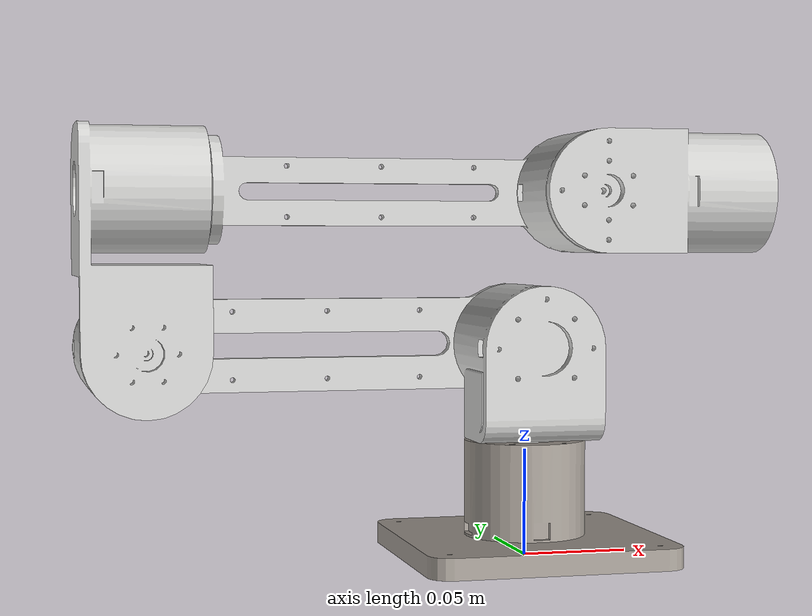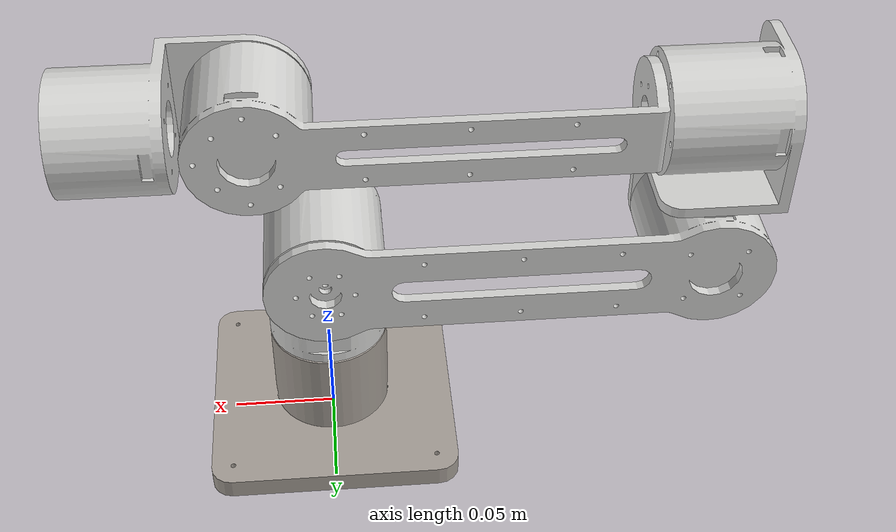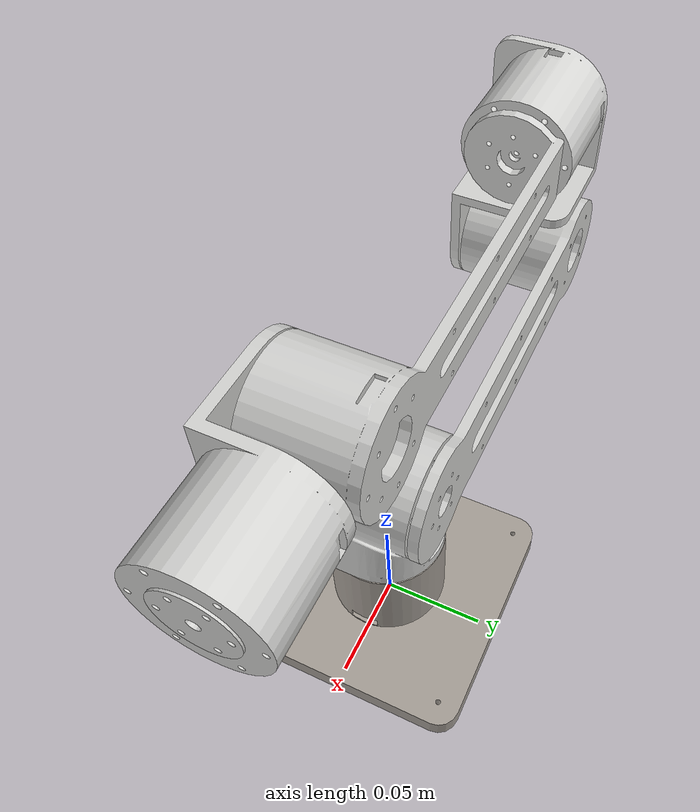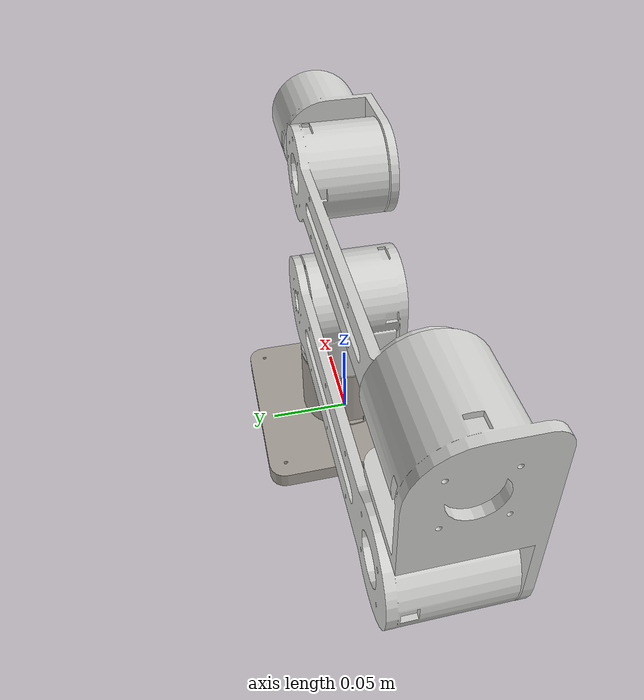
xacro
<?xml version="1.0"?>
<robot xmlns:xacro="http://www.ros.org/wiki/xacro" name="robot_1">
    <xacro:arg name="initial_positions_file" default="initial_positions.yaml" />

    <!-- Import robot_1 urdf file -->
    <xacro:include filename="$(find robot_description)/urdf/robot_1.urdf" />

    <!-- Import control_xacro -->
    <xacro:include filename="robot_1.ros2_control.xacro" />

    <xacro:robot_1_ros2_control name="FakeSystem" initial_positions_file="$(arg initial_positions_file)"/>

</robot>

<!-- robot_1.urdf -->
<robot
  name="robot_1">
  <link
    name="base_link">
    <inertial>
      <origin
        xyz="0.0000019 0.0000116 0.0102762"
        rpy="0 0 0" />
      <mass
        value="1.4290004" />
      <inertia
        ixx=" 0.0016260"
        ixy="-4.34722623357051E-13"
        ixz="8.6780289562829E-12"
        iyy="0.0016257"
        iyz="8.0061068265197E-08"
        izz="0.0028335" />
    </inertial>
    <visual>
      <origin
        xyz="0 0 0"
        rpy="0 0 0" />
      <geometry>
        <mesh
          filename="package://robot_description/meshes/base_link.STL" />
      </geometry>
      <material
        name="">
        <color
          rgba="0.647058823529412 0.619607843137255 0.588235294117647 1" />
      </material>
    </visual>
    <collision>
      <origin
        xyz="0 0 0"
        rpy="0 0 0" />
      <geometry>
        <mesh
          filename="package://robot_description/meshes/base_link.STL" />
      </geometry>
    </collision>
  </link>
  <link
    name="link_1">
    <inertial>
      <origin
        xyz="0.0000155 -0.0071183 -0.0174916"
        rpy="0 0 0" />
      <mass
        value="0.8693372" />
      <inertia
        ixx="0.0005872"
        ixy="0.0000002"
        ixz="-0.0000002"
        iyy="0.0005860"
        iyz="0.0000373"
        izz="0.0004679" />
    </inertial>
    <visual>
      <origin
        xyz="0 0 0"
        rpy="0 0 0" />
      <geometry>
        <mesh
          filename="package://robot_description/meshes/link_1.STL" />
      </geometry>
      <material
        name="">
        <color
          rgba="0.827450980392157 0.827450980392157 0.819607843137255 1" />
      </material>
    </visual>
    <collision>
      <origin
        xyz="0 0 0"
        rpy="0 0 0" />
      <geometry>
        <mesh
          filename="package://robot_description/meshes/link_1.STL" />
      </geometry>
    </collision>
  </link>
  <joint
    name="joint_1"
    type="revolute">
    <origin
      xyz="0 0 0.0995"
      rpy="0 0 0" />
    <parent
      link="base_link" />
    <child
      link="link_1" />
    <axis
      xyz="0 0 1" />
    <limit
      lower="-3"
      upper="3"
      effort="7"
      velocity="3" />
  </joint>
  <link
    name="link_2">
    <inertial>
      <origin
        xyz="-0.1264287 0.0000000 0.0142338"
        rpy="0 0 0" />
      <mass
        value="0.7057861" />
      <inertia
        ixx="0.0003418"
        ixy="0.0000000"
        ixz="-0.0004454"
        iyy="0.0039706"
        iyz="0.0000000"
        izz="0.0039269" />
    </inertial>
    <visual>
      <origin
        xyz="0 0 0"
        rpy="0 0 0" />
      <geometry>
        <mesh
          filename="package://robot_description/meshes/link_2.STL" />
      </geometry>
      <material
        name="">
        <color
          rgba="0.827450980392157 0.827450980392157 0.819607843137255 1" />
      </material>
    </visual>
    <collision>
      <origin
        xyz="0 0 0"
        rpy="0 0 0" />
      <geometry>
        <mesh
          filename="package://robot_description/meshes/link_2.STL" />
      </geometry>
    </collision>
  </link>
  <joint
    name="joint_2"
    type="revolute">
    <origin
      xyz="0 0 0"
      rpy="-1.5708 0 0" />
    <parent
      link="link_1" />
    <child
      link="link_2" />
    <axis
      xyz="0 0 1" />
    <limit
      lower="-3"
      upper="3"
      effort="27"
      velocity="3" />
  </joint>
  <link
    name="link_3">
    <inertial>
      <origin
        xyz="-0.0040700 0.0507632 0.0058721"
        rpy="0 0 0" />
      <mass
        value="0.7424189" />
      <inertia
        ixx="0.0009330"
        ixy="0.0000455"
        ixz="-0.0000088"
        iyy="0.0004552"
        iyz="0.0001906"
        izz="0.0008993" />
    </inertial>
    <visual>
      <origin
        xyz="0 0 0"
        rpy="0 0 0" />
      <geometry>
        <mesh
          filename="package://robot_description/meshes/link_3.STL" />
      </geometry>
      <material
        name="">
        <color
          rgba="0.827450980392157 0.827450980392157 0.819607843137255 1" />
      </material>
    </visual>
    <collision>
      <origin
        xyz="0 0 0"
        rpy="0 0 0" />
      <geometry>
        <mesh
          filename="package://robot_description/meshes/link_3.STL" />
      </geometry>
    </collision>
  </link>
  <joint
    name="joint_3"
    type="revolute">
    <origin
      xyz="-0.1798 0 -0.00087243"
      rpy="-3.1416 0 0" />
    <parent
      link="link_2" />
    <child
      link="link_3" />
    <axis
      xyz="0 0 1" />
    <limit
      lower="-3"
      upper="3"
      effort="27"
      velocity="3" />
  </joint>
  <link
    name="link_4">
    <inertial>
      <origin
        xyz="0.0001993 -0.0067833 0.1533852"
        rpy="0 0 0" />
      <mass
        value="0.6182432" />
      <inertia
        ixx="0.0035123"
        ixy="0.0000000"
        ixz="0.0000000"
        iyy="0.0034891"
        iyz="-0.0000958"
        izz="0.0002445" />
    </inertial>
    <visual>
      <origin
        xyz="0 0 0"
        rpy="0 0 0" />
      <geometry>
        <mesh
          filename="package://robot_description/meshes/link_4.STL" />
      </geometry>
      <material
        name="">
        <color
          rgba="0.827450980392157 0.827450980392157 0.819607843137255 1" />
      </material>
    </visual>
    <collision>
      <origin
        xyz="0 0 0"
        rpy="0 0 0" />
      <geometry>
        <mesh
          filename="package://robot_description/meshes/link_4.STL" />
      </geometry>
    </collision>
  </link>
  <joint
    name="joint_4"
    type="revolute">
    <origin
      xyz="0.0029242 0.071801 -0.00087243"
      rpy="1.5708 0 1.5708" />
    <parent
      link="link_3" />
    <child
      link="link_4" />
    <axis
      xyz="0 0 1" />
    <limit
      lower="-3.13"
      upper="3.13"
      effort="27"
      velocity="3" />
  </joint>
  <link
    name="link_5">
    <inertial>
      <origin
        xyz="-0.0002052 -0.0415096 0.0064647"
        rpy="0 0 0" />
      <mass
        value="0.5144253" />
      <inertia
        ixx="0.0004943"
        ixy="0.0000000"
        ixz="0.0000001"
        iyy="0.0002684"
        iyz="-0.0001200"
        izz="0.00046724" />
    </inertial>
    <visual>
      <origin
        xyz="0 0 0"
        rpy="0 0 0" />
      <geometry>
        <mesh
          filename="package://robot_description/meshes/link_5.STL" />
      </geometry>
      <material
        name="">
        <color
          rgba="0.827450980392157 0.827450980392157 0.819607843137255 1" />
      </material>
    </visual>
    <collision>
      <origin
        xyz="0 0 0"
        rpy="0 0 0" />
      <geometry>
        <mesh
          filename="package://robot_description/meshes/link_5.STL" />
      </geometry>
    </collision>
  </link>
  <joint
    name="joint_5"
    type="revolute">
    <origin
      xyz="0.00019933 0.004294 0.20686"
      rpy="-1.5708 0 0" />
    <parent
      link="link_4" />
    <child
      link="link_5" />
    <axis
      xyz="0 0 1" />
    <limit
      lower="-3"
      upper="3"
      effort="7"
      velocity="3" />
  </joint>
  <link
    name="link_6">
    <inertial>
      <origin
        xyz="-0.000232281946374424 0.00100000000000076 0.0174194941529817"
        rpy="0 0 0" />
      <mass
        value="0.0102510168286635" />
      <inertia
        ixx="8.93402372982488E-07"
        ixy="1.68311598344409E-22"
        ixz="4.80788535343801E-21"
        iyy="8.93402372982488E-07"
        iyz="-7.38328161745982E-23"
        izz="1.58125115444696E-06" />
    </inertial>
    <visual>
      <origin
        xyz="0 0 0"
        rpy="0 0 0" />
      <geometry>
        <mesh
          filename="package://robot_description/meshes/link_6.STL" />
      </geometry>
      <material
        name="">
        <color
          rgba="0.827450980392157 0.827450980392157 0.819607843137255 1" />
      </material>
    </visual>
    <collision>
      <origin
        xyz="0 0 0"
        rpy="0 0 0" />
      <geometry>
        <mesh
          filename="package://robot_description/meshes/link_6.STL" />
      </geometry>
    </collision>
  </link>
  <joint
    name="joint_6"
    type="revolute">
    <origin
      xyz="0.00023228 -0.061253 -0.00048535"
      rpy="1.5708 0 0" />
    <parent
      link="link_5" />
    <child
      link="link_6" />
    <axis
      xyz="0 0 1" />
    <limit
      lower="-3"
      upper="3"
      effort="7"
      velocity="3" />
  </joint>
</robot>
